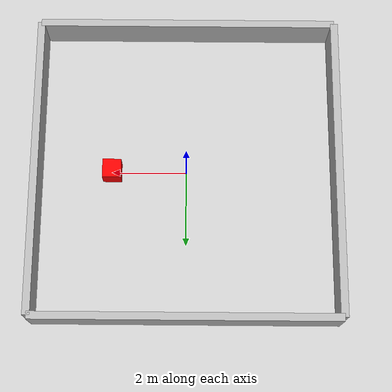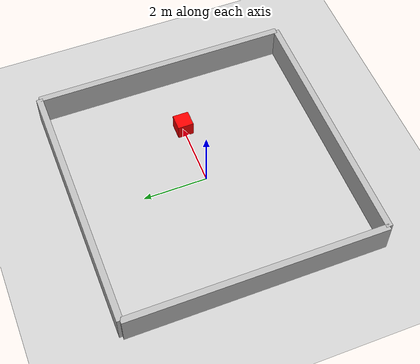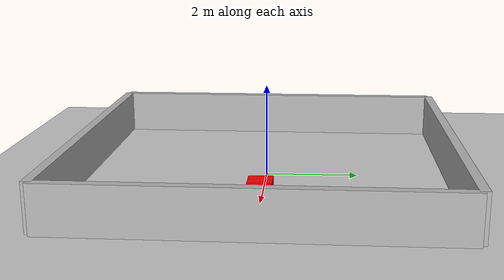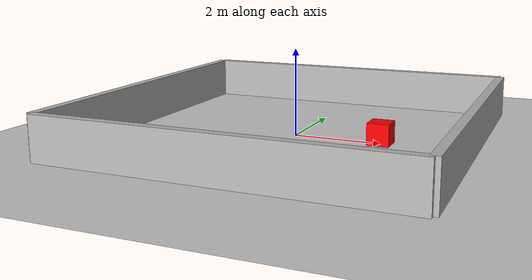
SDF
<?xml version="1.0" ?>
<sdf version="1.6">
  <world name="armazem_sem_obstaculos_frente">
    <light type="directional" name="sun">
      <cast_shadows>true</cast_shadows>
      <pose>0 0 10 0 0 0</pose>
      <diffuse>0.8 0.8 0.8 1</diffuse>
      <specular>0.2 0.2 0.2 1</specular>
      <attenuation>
        <range>1000</range>
        <constant>0.9</constant>
        <linear>0.01</linear>
        <quadratic>0.001</quadratic>
      </attenuation>
      <direction>-0.5 0.1 -0.9</direction>
    </light>

    <!-- Chão -->
    <model name="ground_plane">
      <static>true</static>
      <link name="link">
        <collision name="collision">
          <geometry> <plane> <normal>0 0 1</normal> <size>15 15</size> </plane> </geometry>
        </collision>
        <visual name="visual">
          <geometry> <plane> <normal>0 0 1</normal> <size>15 15</size> </plane> </geometry>
          <material>
            <script> <uri>file://media/materials/scripts/gazebo.material</uri> <name>Gazebo/Grey</name> </script>
          </material>
        </visual>
      </link>
    </model>

    <!-- Paredes -->
    <model name='walls_armazem'>
      <static>true</static>
      <pose>0 0 0 0 0 0</pose>
      <link name='Wall_Norte'> <pose>0 4.0 0.5 0 0 0</pose> <visual name='visual'> <geometry> <box> <size>8 0.2 1</size> </box> </geometry> </visual> <collision name='collision'> <geometry> <box> <size>8 0.2 1</size> </box> </geometry> </collision> </link>
      <link name='Wall_Sul'> <pose>0 -4.0 0.5 0 0 0</pose> <visual name='visual'> <geometry> <box> <size>8 0.2 1</size> </box> </geometry> </visual> <collision name='collision'> <geometry> <box> <size>8 0.2 1</size> </box> </geometry> </collision> </link>
      <link name='Wall_Leste'> <pose>4.0 0 0.5 0 0 1.57</pose> <visual name='visual'> <geometry> <box> <size>8 0.2 1</size> </box> </geometry> </visual> <collision name='collision'> <geometry> <box> <size>8 0.2 1</size> </box> </geometry> </collision> </link>
      <link name='Wall_Oeste'> <pose>-4.0 0 0.5 0 0 1.57</pose> <visual name='visual'> <geometry> <box> <size>8 0.2 1</size> </box> </geometry> </visual> <collision name='collision'> <geometry> <box> <size>8 0.2 1</size> </box> </geometry> </collision> </link>
    </model>

    <!-- Encomenda na frente do robô -->
    <model name="encomenda">
      <static>true</static>
      <pose>2.0 0 0.25 0 0 0</pose>
      <link name="link">
        <visual name="visual">
          <geometry><box><size>0.5 0.5 0.5</size></box></geometry>
          <material><ambient>1 0 0 1</ambient><diffuse>1 0 0 1</diffuse></material>
        </visual>
        <collision name="collision"> <geometry><box><size>0.5 0.5 0.5</size></box></geometry> </collision>
      </link>
    </model>
  </world>
</sdf>
